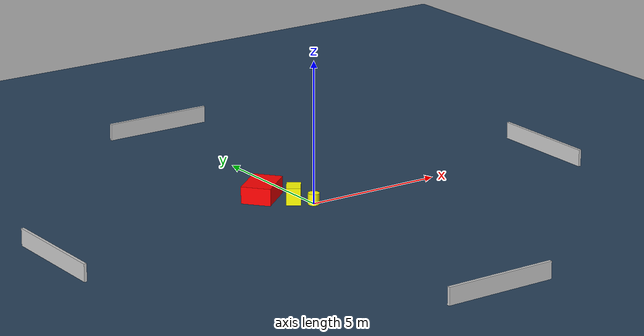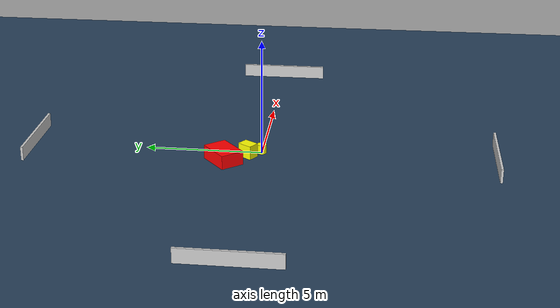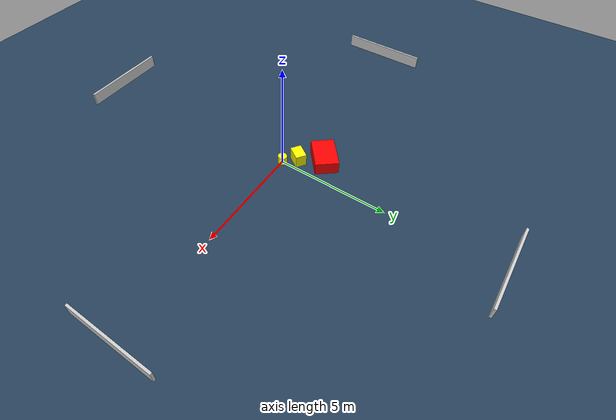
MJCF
<?xml version="1.0" ?>
<mujoco model="generated_environment">
  <option timestep="0.01" integrator="RK4" cone="elliptic"/>
  <default>
    <geom density="1"/>
  </default>
  <asset>
    <texture builtin="gradient" height="3072" name="skybox" rgb1="0.3 0.5 0.7" rgb2="0 0 0" type="skybox" width="512"/>
    <texture builtin="checker" height="300" name="groundplane" rgb1="0.2 0.3 0.4" rgb2="0.1 0.2 0.3" type="2d" width="300"/>
    <material name="groundplane" reflectance="0.2" texrepeat="5 5" texture="groundplane"/>
  </asset>
  <worldbody>
    <light dir="0 0 -1" directional="true" pos="0 0 1.5"/>
    <geom condim="3" friction="0.5 0.005 0.001" material="groundplane" name="floor" pos="0 0 0" size="0 0 0.05" type="plane"/>
    <body name="walls">
      <geom name="wall_1" condim="4" pos="-10.0 0.0 0.3" rgba="0.800000011920929 0.800000011920929 0.800000011920929 1.0" size="0.05 2.0 0.3" type="box"/>
      <geom name="wall_2" condim="4" pos="10.0 0.0 0.3" rgba="0.800000011920929 0.800000011920929 0.800000011920929 1.0" size="0.05 2.0 0.3" type="box"/>
      <geom name="wall_3" condim="4" pos="0.0 -10.0 0.3" rgba="0.800000011920929 0.800000011920929 0.800000011920929 1.0" size="2.0 0.05 0.3" type="box"/>
      <geom name="wall_4" condim="4" pos="0.0 10.0 0.3" rgba="0.800000011920929 0.800000011920929 0.800000011920929 1.0" size="2.0 0.05 0.3" type="box"/>
    </body>
    <body name="robot">
      <joint name="joint_x" type="slide" pos="0 0 0" axis="1 0 0"/>
      <joint name="joint_y" type="slide" pos="0 0 0" axis="0 1 0"/>
      <geom name="robot" type="cylinder" pos="0.0 0.0 0.2" size="0.2 0.2 0.0" mass="5.0" friction="1.0 0.005 0.0001" condim="4" rgba="1.0 1.0 0.0 1.0"/>
    </body>
    <body name="obstacle_1_movable">
      <geom name="obstacle_1_movable" condim="4" pos="-0.4512006266062684 0.54148140964271 0.3" euler="0 0 55.37889902605369" friction="0.0 0.005 0.001" rgba="1.0 1.0 0.0 1.0" size="0.3295942844023238 0.2446280565444065 0.3" type="box" mass="0.1"/>
      <joint type="free"/>
    </body>
    <body name="obstacle_2_static">
      <geom name="obstacle_2_static" condim="4" pos="-1.0922248979436526 1.506416659265661 0.3" euler="0 0 129.6177733913432" friction="0.0 0.005 0.001" rgba="1.0 0.0 0.0 1.0" size="0.5190063469444164 0.7378996789376804 0.3" type="box"/>
    </body>
  </worldbody>
  <actuator>
    <motor name="actuator_x" joint="joint_x" gear="1" ctrlrange="-1 1"/>
    <motor name="actuator_y" joint="joint_y" gear="1" ctrlrange="-1 1"/>
  </actuator>
</mujoco>
